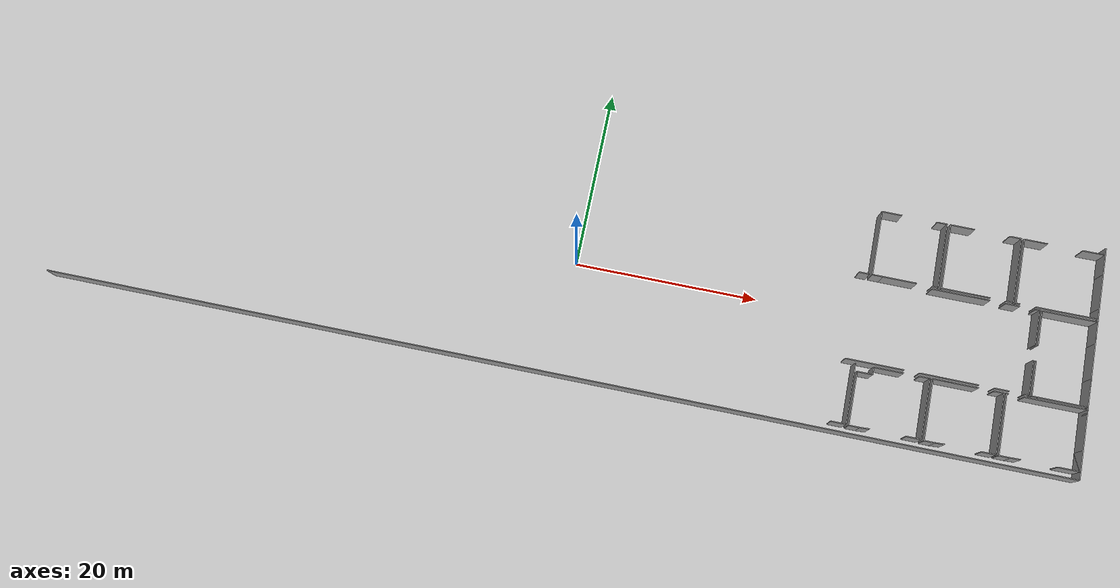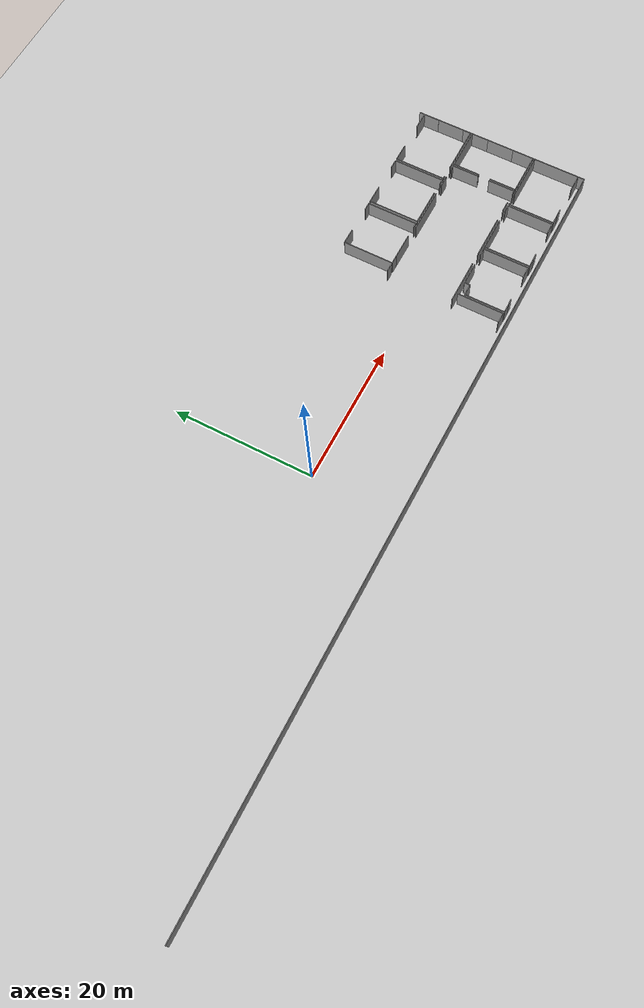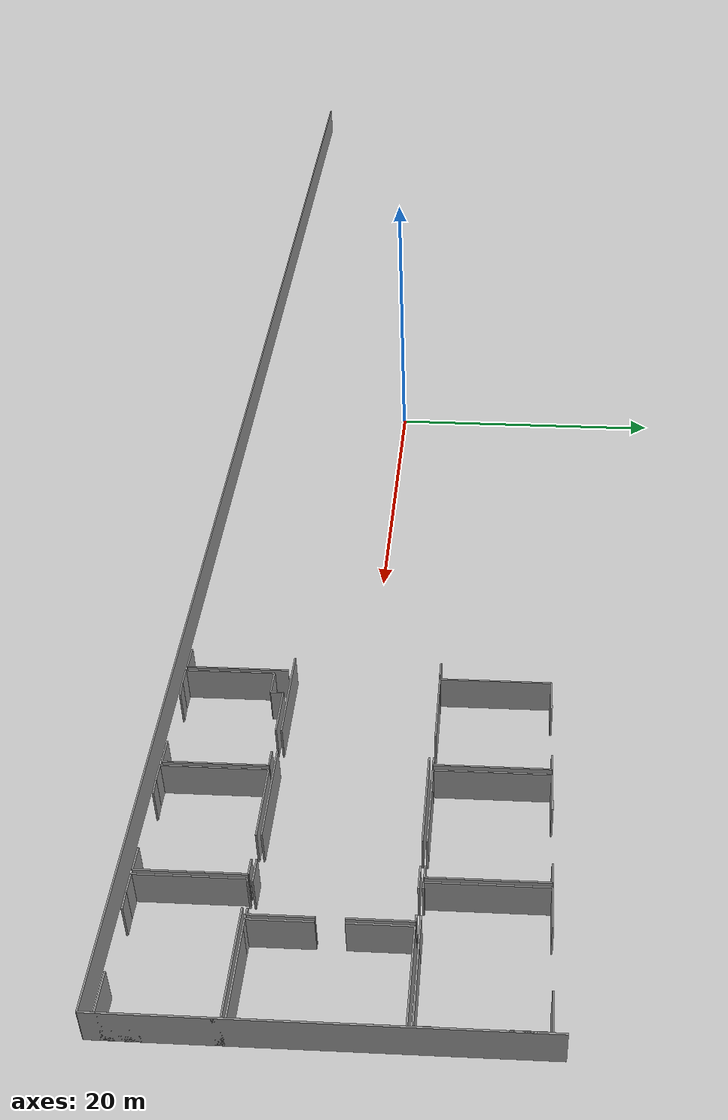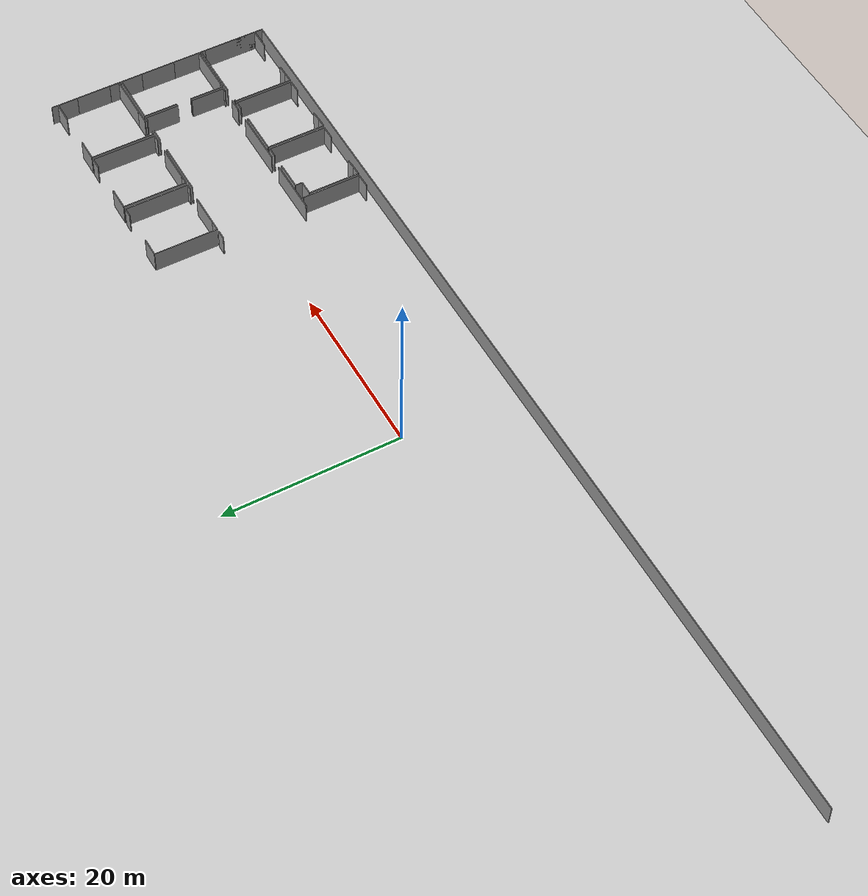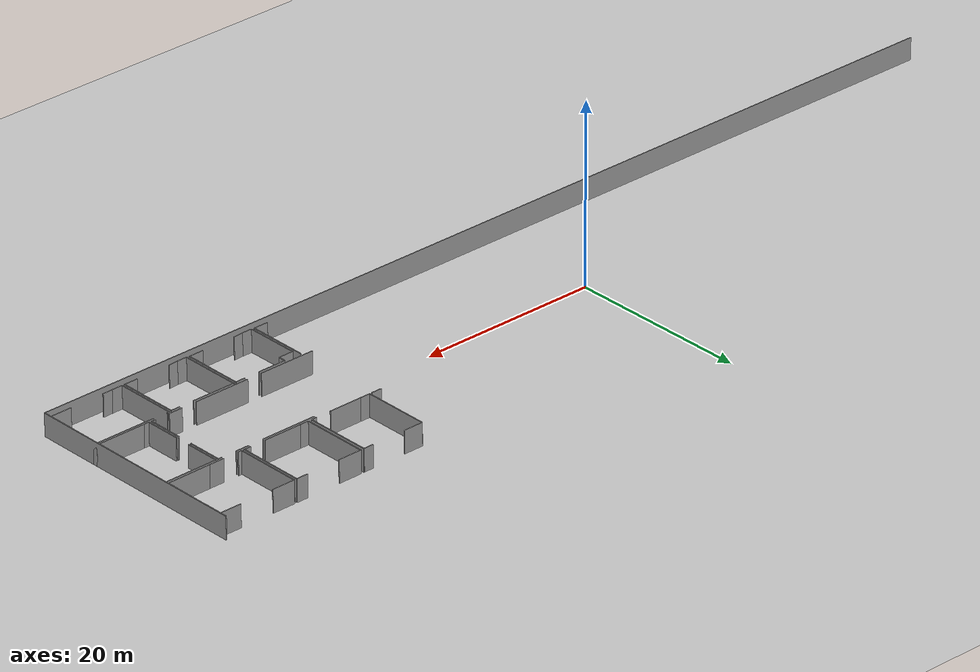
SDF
<sdf version="1.6">
 <world name="default">
  <model name="ground_plane">
   <static>1</static>
   <link name="link">
    <collision name="collision">
     <geometry><plane><normal>0 0 1</normal><size>100 100</size></plane></geometry>
     <surface><friction><ode><mu>100</mu><mu2>50</mu2></ode></friction></surface>
    </collision>
    <visual name="visual">
     <cast_shadows>0</cast_shadows>
     <geometry><plane><normal>0 0 1</normal><size>100 100</size></plane></geometry>
     <material>
      <script><uri>file://media/materials/scripts/gazebo.material</uri><name>Gazebo/Grey</name></script>
     </material>
    </visual>
   </link>
  </model>
  <model name="0510034690_Layout1">
   <static>1</static>
   <link name="Wall_215">
    <collision name="Wall_215_Collision">
     <geometry><box><size>6.28428845474 0.1 2.5</size></box></geometry>
     <pose>3.14214422737 0 1.25 0 0 0</pose>
    </collision>
    <visual name="Wall_215_Visual">
     <pose>3.14214422737 0 1.25 0 0 0</pose>
     <geometry><box><size>6.28428845474 0.1 2.5</size></box></geometry>
     <material>
      <script><uri>file://media/materials/scripts/gazebo.material</uri><name>Gazebo/Grey</name></script>
      <ambient>1 1 1 1</ambient>
     </material>
    </visual>
    <pose>94.3713365952 -8.2999773048 0 0 0 0.0</pose>
   </link>
   <link name="Wall_216">
    <collision name="Wall_216_Collision">
     <geometry><box><size>1.538962842 0.1 2.5</size></box></geometry>
     <pose>0.769481420999 0 1.25 0 0 0</pose>
    </collision>
    <visual name="Wall_216_Visual">
     <pose>0.769481420999 0 1.25 0 0 0</pose>
     <geometry><box><size>1.538962842 0.1 2.5</size></box></geometry>
     <material>
      <script><uri>file://media/materials/scripts/gazebo.material</uri><name>Gazebo/Grey</name></script>
      <ambient>1 1 1 1</ambient>
     </material>
    </visual>
    <pose>102.357765119 -8.2999773048 0 0 0 0.0</pose>
   </link>
   <link name="Wall_217">
    <collision name="Wall_217_Collision">
     <geometry><box><size>0.42182644384 0.1 2.5</size></box></geometry>
     <pose>0.21091322192 0 1.25 0 0 0</pose>
    </collision>
    <visual name="Wall_217_Visual">
     <pose>0.21091322192 0 1.25 0 0 0</pose>
     <geometry><box><size>0.42182644384 0.1 2.5</size></box></geometry>
     <material>
      <script><uri>file://media/materials/scripts/gazebo.material</uri><name>Gazebo/Grey</name></script>
      <ambient>1 1 1 1</ambient>
     </material>
    </visual>
    <pose>105.607870036 -8.2999773048 0 0 0 0.0</pose>
   </link>
   <link name="Wall_218">
    <collision name="Wall_218_Collision">
     <geometry><box><size>3.8855705434 0.1 2.5</size></box></geometry>
     <pose>1.9427852717 0 1.25 0 0 0</pose>
    </collision>
    <visual name="Wall_218_Visual">
     <pose>1.9427852717 0 1.25 0 0 0</pose>
     <geometry><box><size>3.8855705434 0.1 2.5</size></box></geometry>
     <material>
      <script><uri>file://media/materials/scripts/gazebo.material</uri><name>Gazebo/Grey</name></script>
      <ambient>1 1 1 1</ambient>
     </material>
    </visual>
    <pose>106.02969648 -8.2999773048 0 0 0 -1.57079632679</pose>
   </link>
   <link name="Wall_219">
    <collision name="Wall_219_Collision">
     <geometry><box><size>3.83586932129 0.1 2.5</size></box></geometry>
     <pose>1.91793466064 0 1.25 0 0 0</pose>
    </collision>
    <visual name="Wall_219_Visual">
     <pose>1.91793466064 0 1.25 0 0 0</pose>
     <geometry><box><size>3.83586932129 0.1 2.5</size></box></geometry>
     <material>
      <script><uri>file://media/materials/scripts/gazebo.material</uri><name>Gazebo/Grey</name></script>
      <ambient>1 1 1 1</ambient>
     </material>
    </visual>
    <pose>106.02969648 -13.8526941993 0 0 0 -1.57079632679</pose>
   </link>
   <link name="Wall_220">
    <collision name="Wall_220_Collision">
     <geometry><box><size>0.42182644384 0.1 2.5</size></box></geometry>
     <pose>0.21091322192 0 1.25 0 0 0</pose>
    </collision>
    <visual name="Wall_220_Visual">
     <pose>0.21091322192 0 1.25 0 0 0</pose>
     <geometry><box><size>0.42182644384 0.1 2.5</size></box></geometry>
     <material>
      <script><uri>file://media/materials/scripts/gazebo.material</uri><name>Gazebo/Grey</name></script>
      <ambient>1 1 1 1</ambient>
     </material>
    </visual>
    <pose>106.02969648 -17.6885635206 0 0 0 3.14159265359</pose>
   </link>
   <link name="Wall_221">
    <collision name="Wall_221_Collision">
     <geometry><box><size>1.55062741453 0.1 2.5</size></box></geometry>
     <pose>0.775313707267 0 1.25 0 0 0</pose>
    </collision>
    <visual name="Wall_221_Visual">
     <pose>0.775313707267 0 1.25 0 0 0</pose>
     <geometry><box><size>1.55062741453 0.1 2.5</size></box></geometry>
     <material>
      <script><uri>file://media/materials/scripts/gazebo.material</uri><name>Gazebo/Grey</name></script>
      <ambient>1 1 1 1</ambient>
     </material>
    </visual>
    <pose>103.913464086 -17.6885635206 0 0 0 3.14159265359</pose>
   </link>
   <link name="Wall_222">
    <collision name="Wall_222_Collision">
     <geometry><box><size>6.32739665759 0.1 2.5</size></box></geometry>
     <pose>3.1636983288 0 1.25 0 0 0</pose>
    </collision>
    <visual name="Wall_222_Visual">
     <pose>3.1636983288 0 1.25 0 0 0</pose>
     <geometry><box><size>6.32739665759 0.1 2.5</size></box></geometry>
     <material>
      <script><uri>file://media/materials/scripts/gazebo.material</uri><name>Gazebo/Grey</name></script>
      <ambient>1 1 1 1</ambient>
     </material>
    </visual>
    <pose>100.66209128 -17.6885635206 0 0 0 3.14159265359</pose>
   </link>
   <link name="Wall_223">
    <collision name="Wall_223_Collision">
     <geometry><box><size>6.3357647205 0.1 2.5</size></box></geometry>
     <pose>3.16788236025 0 1.25 0 0 0</pose>
    </collision>
    <visual name="Wall_223_Visual">
     <pose>3.16788236025 0 1.25 0 0 0</pose>
     <geometry><box><size>6.3357647205 0.1 2.5</size></box></geometry>
     <material>
      <script><uri>file://media/materials/scripts/gazebo.material</uri><name>Gazebo/Grey</name></script>
      <ambient>1 1 1 1</ambient>
     </material>
    </visual>
    <pose>92.6807343102 -17.6885635206 0 0 0 3.14159265359</pose>
   </link>
   <link name="Wall_253">
    <collision name="Wall_253_Collision">
     <geometry><box><size>6.65907624193 0.1 2.5</size></box></geometry>
     <pose>3.32953812096 0 1.25 0 0 0</pose>
    </collision>
    <visual name="Wall_253_Visual">
     <pose>3.32953812096 0 1.25 0 0 0</pose>
     <geometry><box><size>6.65907624193 0.1 2.5</size></box></geometry>
     <material>
      <script><uri>file://media/materials/scripts/gazebo.material</uri><name>Gazebo/Grey</name></script>
      <ambient>1 1 1 1</ambient>
     </material>
    </visual>
    <pose>87.4916477857 -17.9819528777 0 0 0 -1.57079632679</pose>
   </link>
   <link name="Wall_254">
    <collision name="Wall_254_Collision">
     <geometry><box><size>1.62074163859 0.1 2.5</size></box></geometry>
     <pose>0.810370819297 0 1.25 0 0 0</pose>
    </collision>
    <visual name="Wall_254_Visual">
     <pose>0.810370819297 0 1.25 0 0 0</pose>
     <geometry><box><size>1.62074163859 0.1 2.5</size></box></geometry>
     <material>
      <script><uri>file://media/materials/scripts/gazebo.material</uri><name>Gazebo/Grey</name></script>
      <ambient>1 1 1 1</ambient>
     </material>
    </visual>
    <pose>87.4916477857 -24.6410291196 0 0 0 3.14159265359</pose>
   </link>
   <link name="Wall_256">
    <collision name="Wall_256_Collision">
     <geometry><box><size>1.15377837059 0.1 2.5</size></box></geometry>
     <pose>0.576889185293 0 1.25 0 0 0</pose>
    </collision>
    <visual name="Wall_256_Visual">
     <pose>0.576889185293 0 1.25 0 0 0</pose>
     <geometry><box><size>1.15377837059 0.1 2.5</size></box></geometry>
     <material>
      <script><uri>file://media/materials/scripts/gazebo.material</uri><name>Gazebo/Grey</name></script>
      <ambient>1 1 1 1</ambient>
     </material>
    </visual>
    <pose>88.9419852342 -24.691237497 0 0 0 3.14159265359</pose>
   </link>
   <link name="Wall_257">
    <collision name="Wall_257_Collision">
     <geometry><box><size>5.84496515209 0.1 2.5</size></box></geometry>
     <pose>2.92248257604 0 1.25 0 0 0</pose>
    </collision>
    <visual name="Wall_257_Visual">
     <pose>2.92248257604 0 1.25 0 0 0</pose>
     <geometry><box><size>5.84496515209 0.1 2.5</size></box></geometry>
     <material>
      <script><uri>file://media/materials/scripts/gazebo.material</uri><name>Gazebo/Grey</name></script>
      <ambient>1 1 1 1</ambient>
     </material>
    </visual>
    <pose>87.7882068636 -24.691237497 0 0 0 1.57079632679</pose>
   </link>
   <link name="Wall_258">
    <collision name="Wall_258_Collision">
     <geometry><box><size>1.67361258151 0.1 2.5</size></box></geometry>
     <pose>0.836806290755 0 1.25 0 0 0</pose>
    </collision>
    <visual name="Wall_258_Visual">
     <pose>0.836806290755 0 1.25 0 0 0</pose>
     <geometry><box><size>1.67361258151 0.1 2.5</size></box></geometry>
     <material>
      <script><uri>file://media/materials/scripts/gazebo.material</uri><name>Gazebo/Grey</name></script>
      <ambient>1 1 1 1</ambient>
     </material>
    </visual>
    <pose>87.7882068636 -18.8462723449 0 0 0 0.0</pose>
   </link>
   <link name="Wall_259">
    <collision name="Wall_259_Collision">
     <geometry><box><size>0.811448524368 0.1 2.5</size></box></geometry>
     <pose>0.405724262184 0 1.25 0 0 0</pose>
    </collision>
    <visual name="Wall_259_Visual">
     <pose>0.405724262184 0 1.25 0 0 0</pose>
     <geometry><box><size>0.811448524368 0.1 2.5</size></box></geometry>
     <material>
      <script><uri>file://media/materials/scripts/gazebo.material</uri><name>Gazebo/Grey</name></script>
      <ambient>1 1 1 1</ambient>
     </material>
    </visual>
    <pose>89.4618194451 -18.8462723449 0 0 0 1.57079632679</pose>
   </link>
   <link name="Wall_260">
    <collision name="Wall_260_Collision">
     <geometry><box><size>3.20775744789 0.1 2.5</size></box></geometry>
     <pose>1.60387872395 0 1.25 0 0 0</pose>
    </collision>
    <visual name="Wall_260_Visual">
     <pose>1.60387872395 0 1.25 0 0 0</pose>
     <geometry><box><size>3.20775744789 0.1 2.5</size></box></geometry>
     <material>
      <script><uri>file://media/materials/scripts/gazebo.material</uri><name>Gazebo/Grey</name></script>
      <ambient>1 1 1 1</ambient>
     </material>
    </visual>
    <pose>89.4618194451 -18.0348238206 0 0 0 0.0</pose>
   </link>
   <link name="Wall_261">
    <collision name="Wall_261_Collision">
     <geometry><box><size>1.12360262859 0.1 2.5</size></box></geometry>
     <pose>0.561801314293 0 1.25 0 0 0</pose>
    </collision>
    <visual name="Wall_261_Visual">
     <pose>0.561801314293 0 1.25 0 0 0</pose>
     <geometry><box><size>1.12360262859 0.1 2.5</size></box></geometry>
     <material>
      <script><uri>file://media/materials/scripts/gazebo.material</uri><name>Gazebo/Grey</name></script>
      <ambient>1 1 1 1</ambient>
     </material>
    </visual>
    <pose>94.3698151292 -18.0348238206 0 0 0 0.0</pose>
   </link>
   <link name="Wall_262">
    <collision name="Wall_262_Collision">
     <geometry><box><size>6.59555503713 0.1 2.5</size></box></geometry>
     <pose>3.29777751857 0 1.25 0 0 0</pose>
    </collision>
    <visual name="Wall_262_Visual">
     <pose>3.29777751857 0 1.25 0 0 0</pose>
     <geometry><box><size>6.59555503713 0.1 2.5</size></box></geometry>
     <material>
      <script><uri>file://media/materials/scripts/gazebo.material</uri><name>Gazebo/Grey</name></script>
      <ambient>1 1 1 1</ambient>
     </material>
    </visual>
    <pose>95.4934177578 -18.0348238206 0 0 0 -1.57079632679</pose>
   </link>
   <link name="Wall_263">
    <collision name="Wall_263_Collision">
     <geometry><box><size>1.60895027722 0.1 2.5</size></box></geometry>
     <pose>0.804475138612 0 1.25 0 0 0</pose>
    </collision>
    <visual name="Wall_263_Visual">
     <pose>0.804475138612 0 1.25 0 0 0</pose>
     <geometry><box><size>1.60895027722 0.1 2.5</size></box></geometry>
     <material>
      <script><uri>file://media/materials/scripts/gazebo.material</uri><name>Gazebo/Grey</name></script>
      <ambient>1 1 1 1</ambient>
     </material>
    </visual>
    <pose>95.4934177578 -24.6303788577 0 0 0 3.14159265359</pose>
   </link>
   <link name="Wall_264">
    <collision name="Wall_264_Collision">
     <geometry><box><size>1.06777624962 0.1 2.5</size></box></geometry>
     <pose>0.53388812481 0 1.25 0 0 0</pose>
    </collision>
    <visual name="Wall_264_Visual">
     <pose>0.53388812481 0 1.25 0 0 0</pose>
     <geometry><box><size>1.06777624962 0.1 2.5</size></box></geometry>
     <material>
      <script><uri>file://media/materials/scripts/gazebo.material</uri><name>Gazebo/Grey</name></script>
      <ambient>1 1 1 1</ambient>
     </material>
    </visual>
    <pose>90.0080257331 -24.6303788577 0 0 0 -3.08456606438</pose>
   </link>
   <link name="Wall_265">
    <collision name="Wall_265_Collision">
     <geometry><box><size>1.14084590973 0.1 2.5</size></box></geometry>
     <pose>0.570422954864 0 1.25 0 0 0</pose>
    </collision>
    <visual name="Wall_265_Visual">
     <pose>0.570422954864 0 1.25 0 0 0</pose>
     <geometry><box><size>1.14084590973 0.1 2.5</size></box></geometry>
     <material>
      <script><uri>file://media/materials/scripts/gazebo.material</uri><name>Gazebo/Grey</name></script>
      <ambient>1 1 1 1</ambient>
     </material>
    </visual>
    <pose>96.9410926408 -24.6966894168 0 0 0 3.14159265359</pose>
   </link>
   <link name="Wall_266">
    <collision name="Wall_266_Collision">
     <geometry><box><size>6.69178776057 0.1 2.5</size></box></geometry>
     <pose>3.34589388028 0 1.25 0 0 0</pose>
    </collision>
    <visual name="Wall_266_Visual">
     <pose>3.34589388028 0 1.25 0 0 0</pose>
     <geometry><box><size>6.69178776057 0.1 2.5</size></box></geometry>
     <material>
      <script><uri>file://media/materials/scripts/gazebo.material</uri><name>Gazebo/Grey</name></script>
      <ambient>1 1 1 1</ambient>
     </material>
    </visual>
    <pose>95.8002467311 -24.6966894168 0 0 0 1.57079632679</pose>
   </link>
   <link name="Wall_267">
    <collision name="Wall_267_Collision">
     <geometry><box><size>4.88935772581 0.1 2.5</size></box></geometry>
     <pose>2.44467886291 0 1.25 0 0 0</pose>
    </collision>
    <visual name="Wall_267_Visual">
     <pose>2.44467886291 0 1.25 0 0 0</pose>
     <geometry><box><size>4.88935772581 0.1 2.5</size></box></geometry>
     <material>
      <script><uri>file://media/materials/scripts/gazebo.material</uri><name>Gazebo/Grey</name></script>
      <ambient>1 1 1 1</ambient>
     </material>
    </visual>
    <pose>95.8002467311 -18.0049016562 0 0 0 0.0</pose>
   </link>
   <link name="Wall_268">
    <collision name="Wall_268_Collision">
     <geometry><box><size>1.03637191222 0.1 2.5</size></box></geometry>
     <pose>0.518185956108 0 1.25 0 0 0</pose>
    </collision>
    <visual name="Wall_268_Visual">
     <pose>0.518185956108 0 1.25 0 0 0</pose>
     <geometry><box><size>1.03637191222 0.1 2.5</size></box></geometry>
     <material>
      <script><uri>file://media/materials/scripts/gazebo.material</uri><name>Gazebo/Grey</name></script>
      <ambient>1 1 1 1</ambient>
     </material>
    </visual>
    <pose>102.364484927 -18.0049016562 0 0 0 0.0</pose>
   </link>
   <link name="Wall_269">
    <collision name="Wall_269_Collision">
     <geometry><box><size>6.63460599737 0.1 2.5</size></box></geometry>
     <pose>3.31730299868 0 1.25 0 0 0</pose>
    </collision>
    <visual name="Wall_269_Visual">
     <pose>3.31730299868 0 1.25 0 0 0</pose>
     <geometry><box><size>6.63460599737 0.1 2.5</size></box></geometry>
     <material>
      <script><uri>file://media/materials/scripts/gazebo.material</uri><name>Gazebo/Grey</name></script>
      <ambient>1 1 1 1</ambient>
     </material>
    </visual>
    <pose>103.400856839 -18.0049016562 0 0 0 -1.57079632679</pose>
   </link>
   <link name="Wall_270">
    <collision name="Wall_270_Collision">
     <geometry><box><size>1.50637811219 0.1 2.5</size></box></geometry>
     <pose>0.753189056095 0 1.25 0 0 0</pose>
    </collision>
    <visual name="Wall_270_Visual">
     <pose>0.753189056095 0 1.25 0 0 0</pose>
     <geometry><box><size>1.50637811219 0.1 2.5</size></box></geometry>
     <material>
      <script><uri>file://media/materials/scripts/gazebo.material</uri><name>Gazebo/Grey</name></script>
      <ambient>1 1 1 1</ambient>
     </material>
    </visual>
    <pose>103.400856839 -24.6395076536 0 0 0 3.14159265359</pose>
   </link>
   <link name="Wall_271">
    <collision name="Wall_271_Collision">
     <geometry><box><size>1.05491253072 0.1 2.5</size></box></geometry>
     <pose>0.527456265358 0 1.25 0 0 0</pose>
    </collision>
    <visual name="Wall_271_Visual">
     <pose>0.527456265358 0 1.25 0 0 0</pose>
     <geometry><box><size>1.05491253072 0.1 2.5</size></box></geometry>
     <material>
      <script><uri>file://media/materials/scripts/gazebo.material</uri><name>Gazebo/Grey</name></script>
      <ambient>1 1 1 1</ambient>
     </material>
    </visual>
    <pose>97.9944542565 -24.6395076536 0 0 0 -3.08736085656</pose>
   </link>
   <link name="Wall_272">
    <collision name="Wall_272_Collision">
     <geometry><box><size>1.2463342179 0.1 2.5</size></box></geometry>
     <pose>0.623167108948 0 1.25 0 0 0</pose>
    </collision>
    <visual name="Wall_272_Visual">
     <pose>0.623167108948 0 1.25 0 0 0</pose>
     <geometry><box><size>1.2463342179 0.1 2.5</size></box></geometry>
     <material>
      <script><uri>file://media/materials/scripts/gazebo.material</uri><name>Gazebo/Grey</name></script>
      <ambient>1 1 1 1</ambient>
     </material>
    </visual>
    <pose>104.936776749 -24.6582724007 0 0 0 3.14159265359</pose>
   </link>
   <link name="Wall_273">
    <collision name="Wall_273_Collision">
     <geometry><box><size>6.67251585811 0.1 2.5</size></box></geometry>
     <pose>3.33625792906 0 1.25 0 0 0</pose>
    </collision>
    <visual name="Wall_273_Visual">
     <pose>3.33625792906 0 1.25 0 0 0</pose>
     <geometry><box><size>6.67251585811 0.1 2.5</size></box></geometry>
     <material>
      <script><uri>file://media/materials/scripts/gazebo.material</uri><name>Gazebo/Grey</name></script>
      <ambient>1 1 1 1</ambient>
     </material>
    </visual>
    <pose>103.690442531 -24.6582724007 0 0 0 1.57079632679</pose>
   </link>
   <link name="Wall_274">
    <collision name="Wall_274_Collision">
     <geometry><box><size>0.201340665109 0.1 2.5</size></box></geometry>
     <pose>0.100670332554 0 1.25 0 0 0</pose>
    </collision>
    <visual name="Wall_274_Visual">
     <pose>0.100670332554 0 1.25 0 0 0</pose>
     <geometry><box><size>0.201340665109 0.1 2.5</size></box></geometry>
     <material>
      <script><uri>file://media/materials/scripts/gazebo.material</uri><name>Gazebo/Grey</name></script>
      <ambient>1 1 1 1</ambient>
     </material>
    </visual>
    <pose>103.690442531 -17.9857565426 0 0 0 0.0</pose>
   </link>
   <link name="Wall_275">
    <collision name="Wall_275_Collision">
     <geometry><box><size>6.69571821436 0.1 2.5</size></box></geometry>
     <pose>3.34785910718 0 1.25 0 0 0</pose>
    </collision>
    <visual name="Wall_275_Visual">
     <pose>3.34785910718 0 1.25 0 0 0</pose>
     <geometry><box><size>6.69571821436 0.1 2.5</size></box></geometry>
     <material>
      <script><uri>file://media/materials/scripts/gazebo.material</uri><name>Gazebo/Grey</name></script>
      <ambient>1 1 1 1</ambient>
     </material>
    </visual>
    <pose>105.60203775 -17.9857565426 0 0 0 0.0</pose>
   </link>
   <link name="Wall_276">
    <collision name="Wall_276_Collision">
     <geometry><box><size>0.525412919528 0.1 2.5</size></box></geometry>
     <pose>0.262706459764 0 1.25 0 0 0</pose>
    </collision>
    <visual name="Wall_276_Visual">
     <pose>0.262706459764 0 1.25 0 0 0</pose>
     <geometry><box><size>0.525412919528 0.1 2.5</size></box></geometry>
     <material>
      <script><uri>file://media/materials/scripts/gazebo.material</uri><name>Gazebo/Grey</name></script>
      <ambient>1 1 1 1</ambient>
     </material>
    </visual>
    <pose>112.297755964 -17.9857565426 0 0 0 -1.57079632679</pose>
   </link>
   <link name="Wall_277">
    <collision name="Wall_277_Collision">
     <geometry><box><size>2.23148344201 0.1 2.5</size></box></geometry>
     <pose>1.11574172101 0 1.25 0 0 0</pose>
    </collision>
    <visual name="Wall_277_Visual">
     <pose>1.11574172101 0 1.25 0 0 0</pose>
     <geometry><box><size>2.23148344201 0.1 2.5</size></box></geometry>
     <material>
      <script><uri>file://media/materials/scripts/gazebo.material</uri><name>Gazebo/Grey</name></script>
      <ambient>1 1 1 1</ambient>
     </material>
    </visual>
    <pose>112.297755964 -22.3963596391 0 0 0 -1.57079632679</pose>
   </link>
   <link name="Wall_278">
    <collision name="Wall_278_Collision">
     <geometry><box><size>2.39757681184 0.1 2.5</size></box></geometry>
     <pose>1.19878840592 0 1.25 0 0 0</pose>
    </collision>
    <visual name="Wall_278_Visual">
     <pose>1.19878840592 0 1.25 0 0 0</pose>
     <geometry><box><size>2.39757681184 0.1 2.5</size></box></geometry>
     <material>
      <script><uri>file://media/materials/scripts/gazebo.material</uri><name>Gazebo/Grey</name></script>
      <ambient>1 1 1 1</ambient>
     </material>
    </visual>
    <pose>112.297755964 -24.6278430811 0 0 0 3.14159265359</pose>
   </link>
   <link name="Wall_279">
    <collision name="Wall_279_Collision">
     <geometry><box><size>1.09334325921 0.1 2.5</size></box></geometry>
     <pose>0.546671629607 0 1.25 0 0 0</pose>
    </collision>
    <visual name="Wall_279_Visual">
     <pose>0.546671629607 0 1.25 0 0 0</pose>
     <geometry><box><size>1.09334325921 0.1 2.5</size></box></geometry>
     <material>
      <script><uri>file://media/materials/scripts/gazebo.material</uri><name>Gazebo/Grey</name></script>
      <ambient>1 1 1 1</ambient>
     </material>
    </visual>
    <pose>106.02969648 -24.6278430811 0 0 0 -3.1137576172</pose>
   </link>
   <link name="Wall_280">
    <collision name="Wall_280_Collision">
     <geometry><box><size>0.64231222257 0.1 2.5</size></box></geometry>
     <pose>0.321156111285 0 1.25 0 0 0</pose>
    </collision>
    <visual name="Wall_280_Visual">
     <pose>0.321156111285 0 1.25 0 0 0</pose>
     <geometry><box><size>0.64231222257 0.1 2.5</size></box></geometry>
     <material>
      <script><uri>file://media/materials/scripts/gazebo.material</uri><name>Gazebo/Grey</name></script>
      <ambient>1 1 1 1</ambient>
     </material>
    </visual>
    <pose>106.959565774 -17.736489699 0 0 0 3.14159265359</pose>
   </link>
   <link name="Wall_281">
    <collision name="Wall_281_Collision">
     <geometry><box><size>3.8827811891 0.1 2.5</size></box></geometry>
     <pose>1.94139059455 0 1.25 0 0 0</pose>
    </collision>
    <visual name="Wall_281_Visual">
     <pose>1.94139059455 0 1.25 0 0 0</pose>
     <geometry><box><size>3.8827811891 0.1 2.5</size></box></geometry>
     <material>
      <script><uri>file://media/materials/scripts/gazebo.material</uri><name>Gazebo/Grey</name></script>
      <ambient>1 1 1 1</ambient>
     </material>
    </visual>
    <pose>106.317253551 -17.736489699 0 0 0 1.57079632679</pose>
   </link>
   <link name="Wall_282">
    <collision name="Wall_282_Collision">
     <geometry><box><size>3.85146434761 0.1 2.5</size></box></geometry>
     <pose>1.92573217381 0 1.25 0 0 0</pose>
    </collision>
    <visual name="Wall_282_Visual">
     <pose>1.92573217381 0 1.25 0 0 0</pose>
     <geometry><box><size>3.85146434761 0.1 2.5</size></box></geometry>
     <material>
      <script><uri>file://media/materials/scripts/gazebo.material</uri><name>Gazebo/Grey</name></script>
      <ambient>1 1 1 1</ambient>
     </material>
    </visual>
    <pose>106.317253551 -12.1806030838 0 0 0 1.57079632679</pose>
   </link>
   <link name="Wall_283">
    <collision name="Wall_283_Collision">
     <geometry><box><size>5.97923452511 0.1 2.5</size></box></geometry>
     <pose>2.98961726255 0 1.25 0 0 0</pose>
    </collision>
    <visual name="Wall_283_Visual">
     <pose>2.98961726255 0 1.25 0 0 0</pose>
     <geometry><box><size>5.97923452511 0.1 2.5</size></box></geometry>
     <material>
      <script><uri>file://media/materials/scripts/gazebo.material</uri><name>Gazebo/Grey</name></script>
      <ambient>1 1 1 1</ambient>
     </material>
    </visual>
    <pose>106.317253551 -8.32913873614 0 0 0 0.0</pose>
   </link>
   <link name="Wall_284">
    <collision name="Wall_284_Collision">
     <geometry><box><size>2.4406850147 0.1 2.5</size></box></geometry>
     <pose>1.22034250735 0 1.25 0 0 0</pose>
    </collision>
    <visual name="Wall_284_Visual">
     <pose>1.22034250735 0 1.25 0 0 0</pose>
     <geometry><box><size>2.4406850147 0.1 2.5</size></box></geometry>
     <material>
      <script><uri>file://media/materials/scripts/gazebo.material</uri><name>Gazebo/Grey</name></script>
      <ambient>1 1 1 1</ambient>
     </material>
    </visual>
    <pose>112.296488076 -8.32913873614 0 0 0 -1.57079632679</pose>
   </link>
   <link name="Wall_285">
    <collision name="Wall_285_Collision">
     <geometry><box><size>3.06828973277 0.1 2.5</size></box></geometry>
     <pose>1.53414486638 0 1.25 0 0 0</pose>
    </collision>
    <visual name="Wall_285_Visual">
     <pose>1.53414486638 0 1.25 0 0 0</pose>
     <geometry><box><size>3.06828973277 0.1 2.5</size></box></geometry>
     <material>
      <script><uri>file://media/materials/scripts/gazebo.material</uri><name>Gazebo/Grey</name></script>
      <ambient>1 1 1 1</ambient>
     </material>
    </visual>
    <pose>112.296488076 -14.6622408912 0 0 0 -1.57079632679</pose>
   </link>
   <link name="Wall_286">
    <collision name="Wall_286_Collision">
     <geometry><box><size>5.33692562941 0.1 2.5</size></box></geometry>
     <pose>2.66846281471 0 1.25 0 0 0</pose>
    </collision>
    <visual name="Wall_286_Visual">
     <pose>2.66846281471 0 1.25 0 0 0</pose>
     <geometry><box><size>5.33692562941 0.1 2.5</size></box></geometry>
     <material>
      <script><uri>file://media/materials/scripts/gazebo.material</uri><name>Gazebo/Grey</name></script>
      <ambient>1 1 1 1</ambient>
     </material>
    </visual>
    <pose>112.296488076 -17.7305306239 0 0 0 -3.14047607885</pose>
   </link>
   <link name="Wall_287">
    <collision name="Wall_287_Collision">
     <geometry><box><size>1.71583326254 0.1 2.5</size></box></geometry>
     <pose>0.857916631271 0 1.25 0 0 0</pose>
    </collision>
    <visual name="Wall_287_Visual">
     <pose>0.857916631271 0 1.25 0 0 0</pose>
     <geometry><box><size>1.71583326254 0.1 2.5</size></box></geometry>
     <material>
      <script><uri>file://media/materials/scripts/gazebo.material</uri><name>Gazebo/Grey</name></script>
      <ambient>1 1 1 1</ambient>
     </material>
    </visual>
    <pose>107.342848413 -8.04399065313 0 0 0 3.14159265359</pose>
   </link>
   <link name="Wall_288">
    <collision name="Wall_288_Collision">
     <geometry><box><size>0.431462395066 0.1 2.5</size></box></geometry>
     <pose>0.215731197533 0 1.25 0 0 0</pose>
    </collision>
    <visual name="Wall_288_Visual">
     <pose>0.215731197533 0 1.25 0 0 0</pose>
     <geometry><box><size>0.431462395066 0.1 2.5</size></box></geometry>
     <material>
      <script><uri>file://media/materials/scripts/gazebo.material</uri><name>Gazebo/Grey</name></script>
      <ambient>1 1 1 1</ambient>
     </material>
    </visual>
    <pose>103.882147245 -8.04399065313 0 0 0 3.14159265359</pose>
   </link>
   <link name="Wall_289">
    <collision name="Wall_289_Collision">
     <geometry><box><size>7.27666464227 0.1 2.5</size></box></geometry>
     <pose>3.63833232114 0 1.25 0 0 0</pose>
    </collision>
    <visual name="Wall_289_Visual">
     <pose>3.63833232114 0 1.25 0 0 0</pose>
     <geometry><box><size>7.27666464227 0.1 2.5</size></box></geometry>
     <material>
      <script><uri>file://media/materials/scripts/gazebo.material</uri><name>Gazebo/Grey</name></script>
      <ambient>1 1 1 1</ambient>
     </material>
    </visual>
    <pose>103.45068485 -8.04399065313 0 0 0 1.57079632679</pose>
   </link>
   <link name="Wall_290">
    <collision name="Wall_290_Collision">
     <geometry><box><size>2.58852079273 0.1 2.5</size></box></geometry>
     <pose>1.29426039637 0 1.25 0 0 0</pose>
    </collision>
    <visual name="Wall_290_Visual">
     <pose>1.29426039637 0 1.25 0 0 0</pose>
     <geometry><box><size>2.58852079273 0.1 2.5</size></box></geometry>
     <material>
      <script><uri>file://media/materials/scripts/gazebo.material</uri><name>Gazebo/Grey</name></script>
      <ambient>1 1 1 1</ambient>
     </material>
    </visual>
    <pose>103.45068485 -0.767326010856 0 0 0 0.0</pose>
   </link>
   <link name="Wall_291">
    <collision name="Wall_291_Collision">
     <geometry><box><size>2.40264836512 0.1 2.5</size></box></geometry>
     <pose>1.20132418256 0 1.25 0 0 0</pose>
    </collision>
    <visual name="Wall_291_Visual">
     <pose>1.20132418256 0 1.25 0 0 0</pose>
     <geometry><box><size>2.40264836512 0.1 2.5</size></box></geometry>
     <material>
      <script><uri>file://media/materials/scripts/gazebo.material</uri><name>Gazebo/Grey</name></script>
      <ambient>1 1 1 1</ambient>
     </material>
    </visual>
    <pose>109.874821386 -0.767326010856 0 0 0 0.0</pose>
   </link>
   <link name="Wall_292">
    <collision name="Wall_292_Collision">
     <geometry><box><size>2.26254670584 0.1 2.5</size></box></geometry>
     <pose>1.13127335292 0 1.25 0 0 0</pose>
    </collision>
    <visual name="Wall_292_Visual">
     <pose>1.13127335292 0 1.25 0 0 0</pose>
     <geometry><box><size>2.26254670584 0.1 2.5</size></box></geometry>
     <material>
      <script><uri>file://media/materials/scripts/gazebo.material</uri><name>Gazebo/Grey</name></script>
      <ambient>1 1 1 1</ambient>
     </material>
    </visual>
    <pose>112.277469751 -0.767326010856 0 0 0 -1.57079632679</pose>
   </link>
   <link name="Wall_293">
    <collision name="Wall_293_Collision">
     <geometry><box><size>1.1284206042 0.1 2.5</size></box></geometry>
     <pose>0.5642103021 0 1.25 0 0 0</pose>
    </collision>
    <visual name="Wall_293_Visual">
     <pose>0.5642103021 0 1.25 0 0 0</pose>
     <geometry><box><size>1.1284206042 0.1 2.5</size></box></geometry>
     <material>
      <script><uri>file://media/materials/scripts/gazebo.material</uri><name>Gazebo/Grey</name></script>
      <ambient>1 1 1 1</ambient>
     </material>
    </visual>
    <pose>112.277469751 -6.89008549371 0 0 0 -1.57079632679</pose>
   </link>
   <link name="Wall_294">
    <collision name="Wall_294_Collision">
     <geometry><box><size>4.9346871451 0.1 2.5</size></box></geometry>
     <pose>2.46734357255 0 1.25 0 0 0</pose>
    </collision>
    <visual name="Wall_294_Visual">
     <pose>2.46734357255 0 1.25 0 0 0</pose>
     <geometry><box><size>4.9346871451 0.1 2.5</size></box></geometry>
     <material>
      <script><uri>file://media/materials/scripts/gazebo.material</uri><name>Gazebo/Grey</name></script>
      <ambient>1 1 1 1</ambient>
     </material>
    </visual>
    <pose>112.277469751 -8.01850609791 0 0 0 -3.13642825963</pose>
   </link>
   <link name="Wall_295">
    <collision name="Wall_295_Collision">
     <geometry><box><size>1.02889137113 0.1 2.5</size></box></geometry>
     <pose>0.514445685566 0 1.25 0 0 0</pose>
    </collision>
    <visual name="Wall_295_Visual">
     <pose>0.514445685566 0 1.25 0 0 0</pose>
     <geometry><box><size>1.02889137113 0.1 2.5</size></box></geometry>
     <material>
      <script><uri>file://media/materials/scripts/gazebo.material</uri><name>Gazebo/Grey</name></script>
      <ambient>1 1 1 1</ambient>
     </material>
    </visual>
    <pose>96.3889272777 -8.01520958828 0 0 0 3.14159265359</pose>
   </link>
   <link name="Wall_296">
    <collision name="Wall_296_Collision">
     <geometry><box><size>7.25244797537 0.1 2.5</size></box></geometry>
     <pose>3.62622398769 0 1.25 0 0 0</pose>
    </collision>
    <visual name="Wall_296_Visual">
     <pose>3.62622398769 0 1.25 0 0 0</pose>
     <geometry><box><size>7.25244797537 0.1 2.5</size></box></geometry>
     <material>
      <script><uri>file://media/materials/scripts/gazebo.material</uri><name>Gazebo/Grey</name></script>
      <ambient>1 1 1 1</ambient>
     </material>
    </visual>
    <pose>95.3600359066 -8.01520958828 0 0 0 1.57079632679</pose>
   </link>
   <link name="Wall_297">
    <collision name="Wall_297_Collision">
     <geometry><box><size>2.65939574978 0.1 2.5</size></box></geometry>
     <pose>1.32969787489 0 1.25 0 0 0</pose>
    </collision>
    <visual name="Wall_297_Visual">
     <pose>1.32969787489 0 1.25 0 0 0</pose>
     <geometry><box><size>2.65939574978 0.1 2.5</size></box></geometry>
     <material>
      <script><uri>file://media/materials/scripts/gazebo.material</uri><name>Gazebo/Grey</name></script>
      <ambient>1 1 1 1</ambient>
     </material>
    </visual>
    <pose>95.3600359066 -0.762761612906 0 0 0 0.0</pose>
   </link>
   <link name="Wall_298">
    <collision name="Wall_298_Collision">
     <geometry><box><size>1.27967968069 0.1 2.5</size></box></geometry>
     <pose>0.639839840347 0 1.25 0 0 0</pose>
    </collision>
    <visual name="Wall_298_Visual">
     <pose>0.639839840347 0 1.25 0 0 0</pose>
     <geometry><box><size>1.27967968069 0.1 2.5</size></box></geometry>
     <material>
      <script><uri>file://media/materials/scripts/gazebo.material</uri><name>Gazebo/Grey</name></script>
      <ambient>1 1 1 1</ambient>
     </material>
    </visual>
    <pose>101.856949232 -0.762761612906 0 0 0 0.0</pose>
   </link>
   <link name="Wall_299">
    <collision name="Wall_299_Collision">
     <geometry><box><size>7.25739273982 0.1 2.5</size></box></geometry>
     <pose>3.62869636991 0 1.25 0 0 0</pose>
    </collision>
    <visual name="Wall_299_Visual">
     <pose>3.62869636991 0 1.25 0 0 0</pose>
     <geometry><box><size>7.25739273982 0.1 2.5</size></box></geometry>
     <material>
      <script><uri>file://media/materials/scripts/gazebo.material</uri><name>Gazebo/Grey</name></script>
      <ambient>1 1 1 1</ambient>
     </material>
    </visual>
    <pose>103.136628913 -0.762761612906 0 0 0 -1.57079632679</pose>
   </link>
   <link name="Wall_300">
    <collision name="Wall_300_Collision">
     <geometry><box><size>0.762761612906 0.1 2.5</size></box></geometry>
     <pose>0.381380806453 0 1.25 0 0 0</pose>
    </collision>
    <visual name="Wall_300_Visual">
     <pose>0.381380806453 0 1.25 0 0 0</pose>
     <geometry><box><size>0.762761612906 0.1 2.5</size></box></geometry>
     <material>
      <script><uri>file://media/materials/scripts/gazebo.material</uri><name>Gazebo/Grey</name></script>
      <ambient>1 1 1 1</ambient>
     </material>
    </visual>
    <pose>103.136628913 -8.02015435272 0 0 0 3.14159265359</pose>
   </link>
   <link name="Wall_301">
    <collision name="Wall_301_Collision">
     <geometry><box><size>4.27950630094 0.1 2.5</size></box></geometry>
     <pose>2.13975315047 0 1.25 0 0 0</pose>
    </collision>
    <visual name="Wall_301_Visual">
     <pose>2.13975315047 0 1.25 0 0 0</pose>
     <geometry><box><size>4.27950630094 0.1 2.5</size></box></geometry>
     <material>
      <script><uri>file://media/materials/scripts/gazebo.material</uri><name>Gazebo/Grey</name></script>
      <ambient>1 1 1 1</ambient>
     </material>
    </visual>
    <pose>100.668430722 -8.02015435272 0 0 0 3.14043720126</pose>
   </link>
   <link name="Wall_302">
    <collision name="Wall_302_Collision">
     <geometry><box><size>1.1558069919 0.1 2.5</size></box></geometry>
     <pose>0.577903495948 0 1.25 0 0 0</pose>
    </collision>
    <visual name="Wall_302_Visual">
     <pose>0.577903495948 0 1.25 0 0 0</pose>
     <geometry><box><size>1.1558069919 0.1 2.5</size></box></geometry>
     <material>
      <script><uri>file://media/materials/scripts/gazebo.material</uri><name>Gazebo/Grey</name></script>
      <ambient>1 1 1 1</ambient>
     </material>
    </visual>
    <pose>88.9546641174 -8.01850609791 0 0 0 3.14159265359</pose>
   </link>
   <link name="Wall_303">
    <collision name="Wall_303_Collision">
     <geometry><box><size>7.2473764221 0.1 2.5</size></box></geometry>
     <pose>3.62368821105 0 1.25 0 0 0</pose>
    </collision>
    <visual name="Wall_303_Visual">
     <pose>3.62368821105 0 1.25 0 0 0</pose>
     <geometry><box><size>7.2473764221 0.1 2.5</size></box></geometry>
     <material>
      <script><uri>file://media/materials/scripts/gazebo.material</uri><name>Gazebo/Grey</name></script>
      <ambient>1 1 1 1</ambient>
     </material>
    </visual>
    <pose>87.7988571255 -8.01850609791 0 0 0 1.57079632679</pose>
   </link>
   <link name="Wall_304">
    <collision name="Wall_304_Collision">
     <geometry><box><size>2.20092733352 0.1 2.5</size></box></geometry>
     <pose>1.10046366676 0 1.25 0 0 0</pose>
    </collision>
    <visual name="Wall_304_Visual">
     <pose>1.10046366676 0 1.25 0 0 0</pose>
     <geometry><box><size>2.20092733352 0.1 2.5</size></box></geometry>
     <material>
      <script><uri>file://media/materials/scripts/gazebo.material</uri><name>Gazebo/Grey</name></script>
      <ambient>1 1 1 1</ambient>
     </material>
    </visual>
    <pose>87.7988571255 -0.771129675814 0 0 0 0.0</pose>
   </link>
   <link name="Wall_305">
    <collision name="Wall_305_Collision">
     <geometry><box><size>1.09685018505 0.1 2.5</size></box></geometry>
     <pose>0.548425092524 0 1.25 0 0 0</pose>
    </collision>
    <visual name="Wall_305_Visual">
     <pose>0.548425092524 0 1.25 0 0 0</pose>
     <geometry><box><size>1.09685018505 0.1 2.5</size></box></geometry>
     <material>
      <script><uri>file://media/materials/scripts/gazebo.material</uri><name>Gazebo/Grey</name></script>
      <ambient>1 1 1 1</ambient>
     </material>
    </visual>
    <pose>93.8639276898 -0.771129675814 0 0 0 0.0</pose>
   </link>
   <link name="Wall_306">
    <collision name="Wall_306_Collision">
     <geometry><box><size>7.24598174494 0.1 2.5</size></box></geometry>
     <pose>3.62299087247 0 1.25 0 0 0</pose>
    </collision>
    <visual name="Wall_306_Visual">
     <pose>3.62299087247 0 1.25 0 0 0</pose>
     <geometry><box><size>7.24598174494 0.1 2.5</size></box></geometry>
     <material>
      <script><uri>file://media/materials/scripts/gazebo.material</uri><name>Gazebo/Grey</name></script>
      <ambient>1 1 1 1</ambient>
     </material>
    </visual>
    <pose>94.9607778748 -0.771129675814 0 0 0 -1.57079632679</pose>
   </link>
   <link name="Wall_307">
    <collision name="Wall_307_Collision">
     <geometry><box><size>0.605416672478 0.1 2.5</size></box></geometry>
     <pose>0.302708336239 0 1.25 0 0 0</pose>
    </collision>
    <visual name="Wall_307_Visual">
     <pose>0.302708336239 0 1.25 0 0 0</pose>
     <geometry><box><size>0.605416672478 0.1 2.5</size></box></geometry>
     <material>
      <script><uri>file://media/materials/scripts/gazebo.material</uri><name>Gazebo/Grey</name></script>
      <ambient>1 1 1 1</ambient>
     </material>
    </visual>
    <pose>94.9607778748 -8.01711142076 0 0 0 3.14159265359</pose>
   </link>
   <link name="Wall_308">
    <collision name="Wall_308_Collision">
     <geometry><box><size>3.71161652802 0.1 2.5</size></box></geometry>
     <pose>1.85580826401 0 1.25 0 0 0</pose>
    </collision>
    <visual name="Wall_308_Visual">
     <pose>1.85580826401 0 1.25 0 0 0</pose>
     <geometry><box><size>3.71161652802 0.1 2.5</size></box></geometry>
     <material>
      <script><uri>file://media/materials/scripts/gazebo.material</uri><name>Gazebo/Grey</name></script>
      <ambient>1 1 1 1</ambient>
     </material>
    </visual>
    <pose>92.6662803834 -8.01711142076 0 0 0 -3.14121689355</pose>
   </link>
   <link name="Wall_314">
    <collision name="Wall_314_Collision">
     <geometry><box><size>1.11637566517 0.1 2.5</size></box></geometry>
     <pose>0.558187832583 0 1.25 0 0 0</pose>
    </collision>
    <visual name="Wall_314_Visual">
     <pose>0.558187832583 0 1.25 0 0 0</pose>
     <geometry><box><size>1.11637566517 0.1 2.5</size></box></geometry>
     <material>
      <script><uri>file://media/materials/scripts/gazebo.material</uri><name>Gazebo/Grey</name></script>
      <ambient>1 1 1 1</ambient>
     </material>
    </visual>
    <pose>87.4903798974 -8.02433838418 0 0 0 3.14159265359</pose>
   </link>
   <link name="Wall_330">
    <collision name="Wall_330_Collision">
     <geometry><box><size>25.5307063533 0.1 2.5</size></box></geometry>
     <pose>12.7653531766 0 1.25 0 0 0</pose>
    </collision>
    <visual name="Wall_330_Visual">
     <pose>12.7653531766 0 1.25 0 0 0</pose>
     <geometry><box><size>25.5307063533 0.1 2.5</size></box></geometry>
     <material>
      <script><uri>file://media/materials/scripts/gazebo.material</uri><name>Gazebo/Grey</name></script>
      <ambient>1 1 1 1</ambient>
     </material>
    </visual>
    <pose>112.297755964 -25.5307063533 0 0 0 1.57079632679</pose>
   </link>
   <link name="Wall_331">
    <collision name="Wall_331_Collision">
     <geometry><box><size>112.297755964 0.1 2.5</size></box></geometry>
     <pose>56.1488779822 0 1.25 0 0 0</pose>
    </collision>
    <visual name="Wall_331_Visual">
     <pose>56.1488779822 0 1.25 0 0 0</pose>
     <geometry><box><size>112.297755964 0.1 2.5</size></box></geometry>
     <material>
      <script><uri>file://media/materials/scripts/gazebo.material</uri><name>Gazebo/Grey</name></script>
      <ambient>1 1 1 1</ambient>
     </material>
    </visual>
    <pose>112.297755964 -25.5307063533 0 0 0 3.14159265359</pose>
   </link>
   <pose>-56.1 12.7807063533 0 0 0 0</pose>
  </model>
 </world>
</sdf>
